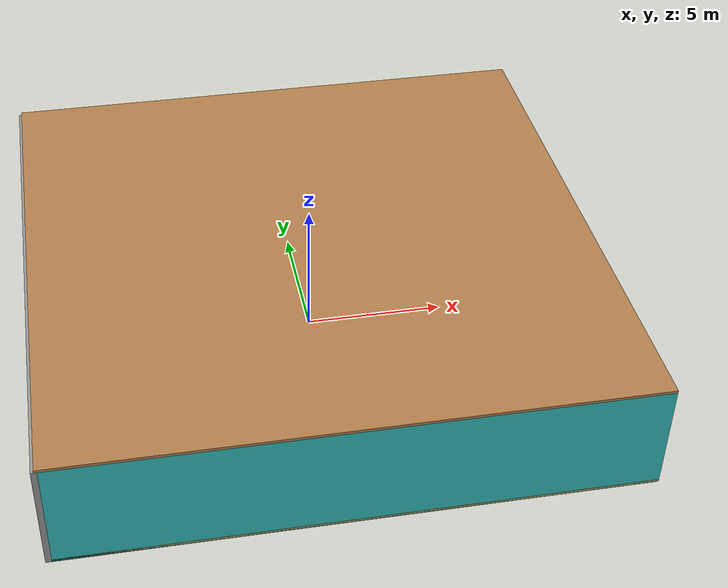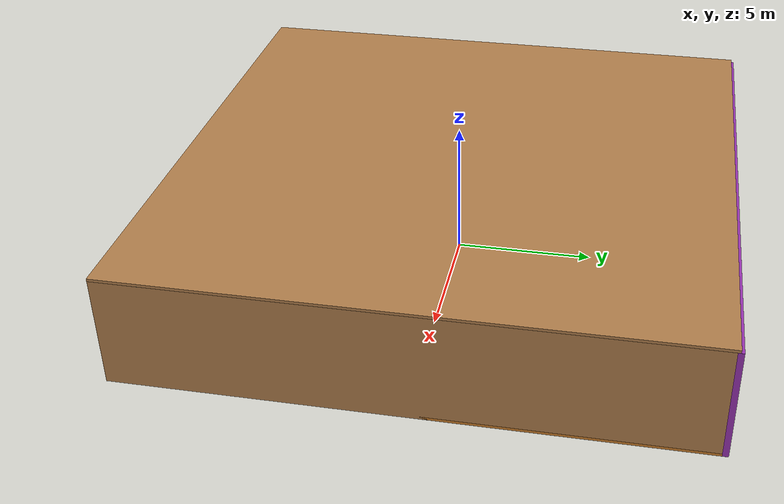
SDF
<sdf version="1.4">
 <world name="default">
  <physics type="ode">
   <max_step_size>0.001</max_step_size>
   <real_time_factor>1</real_time_factor>
   <real_time_update_rate>1000</real_time_update_rate>
   <gravity>0 0 -9.8</gravity>
  </physics>
  <scene><ambient>0.4 0.4 0.4 1</ambient><background>0.7 0.7 0.7 1</background><shadows>1</shadows></scene>
  <model name="Surrounding">
   <static>1</static>
   <link name="Ceiling">
    <collision name="Ceiling_Collision"><geometry><box><size>20 20 0.1</size></box></geometry></collision>
    <visual name="Ceiling_Visual">
     <geometry><box><size>20 20 0.1</size></box></geometry>
     <material>
      <script><uri>file://media/materials/scripts/gazebo.material</uri><name>Gazebo/WoodFloor</name></script>
     </material>
    </visual>
    <pose>0 0 4.05 0 0 0</pose>
   </link>
   <link name="Wall_South">
    <collision name="Wall_South_Collision">
     <geometry><box><size>20 0 4</size></box></geometry>
     <pose>0 0 2 0 -0 0</pose>
    </collision>
    <visual name="Wall_South_Visual">
     <pose>0 0 2 0 -0 0</pose>
     <geometry><box><size>20 0 4</size></box></geometry>
     <material>
      <script>
       <uri>file://media/materials/scripts/gazebo.material</uri>
       <name>Gazebo/TurquoiseGlowOutline</name>
      </script>
     </material>
    </visual>
    <velocity_decay><linear>0</linear><angular>0</angular></velocity_decay>
    <pose>0 -10 0 0 -0 0</pose>
   </link>
   <link name="Wall_East">
    <collision name="Wall_21_Collision">
     <geometry><box><size>20 0 4</size></box></geometry>
     <pose>0 0 2 0 -0 0</pose>
    </collision>
    <visual name="Wall_21_Visual">
     <pose>0 0 2 0 -0 0</pose>
     <geometry><box><size>20 0 4</size></box></geometry>
     <material>
      <script><uri>file://media/materials/scripts/gazebo.material</uri><name>Gazebo/Wood</name></script>
     </material>
    </visual>
    <velocity_decay><linear>0</linear><angular>0</angular></velocity_decay>
    <pose>10 0 0 0 -0 1.5708</pose>
   </link>
   <link name="Wall_North">
    <collision name="Wall_22_Collision">
     <geometry><box><size>20 0.2 4</size></box></geometry>
     <pose>0 0 2 0 -0 0</pose>
    </collision>
    <visual name="Wall_22_Visual">
     <pose>0 0 2 0 -0 0</pose>
     <geometry><box><size>20 0.2 4</size></box></geometry>
     <material>
      <script><uri>file://media/materials/scripts/gazebo.material</uri><name>Gazebo/PurpleGlow</name></script>
     </material>
    </visual>
    <velocity_decay><linear>0</linear><angular>0</angular></velocity_decay>
    <pose>0 10 0 0 -0 0</pose>
   </link>
   <link name="Wall_West">
    <collision name="Wall_23_Collision">
     <geometry><box><size>20 0.2 4</size></box></geometry>
     <pose>0 0 2 0 -0 0</pose>
    </collision>
    <visual name="Wall_23_Visual">
     <pose>0 0 2 0 -0 0</pose>
     <geometry><box><size>20 0.2 4</size></box></geometry>
     <material>
      <script><uri>file://media/materials/scripts/gazebo.material</uri><name>Gazebo/GreyGradientSky</name></script>
     </material>
    </visual>
    <velocity_decay><linear>0</linear><angular>0</angular></velocity_decay>
    <pose>-10 0 0 0 0 -1.5708</pose>
   </link>
   <link name="Ground_link">
    <collision name="collision">
     <pose>0 0 .05 0 -0 0</pose>
     <geometry><box><size>20 20 0.1</size></box></geometry>
    </collision>
    <visual name="visual">
     <pose>0 0 .05 0 -0 0</pose>
     <geometry><box><size>20 20 0.1</size></box></geometry>
     <material>
      <script>
       <uri>file://media/materials/scripts/gazebo.material</uri>
       <name>Gazebo/OrangeTransparent</name>
      </script>
     </material>
    </visual>
   </link>
   <static>1</static>
  </model>
  <spherical_coordinates>
   <surface_model>EARTH_WGS84</surface_model>
   <latitude_deg>0</latitude_deg>
   <longitude_deg>0</longitude_deg>
   <elevation>0</elevation>
   <heading_deg>0</heading_deg>
  </spherical_coordinates>
  <light name="lightball_0" type="diffuse">
   <diffuse>0.8 0.8 0.8 1</diffuse>
   <specular>0.2 0.2 0.2 1</specular>
   <attenuation>
    <range>100</range>
    <constant>0.7</constant>
    <linear>0.01</linear>
    <quadratic>0.001</quadratic>
   </attenuation>
   <direction>-0.5 0.1 -0.9</direction>
   <pose>-1.46556617056 9.21511826037 3.2278424814 0 0 0</pose>
  </light>
  <light name="lightball_1" type="diffuse">
   <diffuse>0.8 0.8 0.8 1</diffuse>
   <specular>0.2 0.2 0.2 1</specular>
   <attenuation>
    <range>100</range>
    <constant>0.7</constant>
    <linear>0.01</linear>
    <quadratic>0.001</quadratic>
   </attenuation>
   <direction>-0.5 0.1 -0.9</direction>
   <pose>-3.04729255329 -8.40506404665 1.89753921167 0 0 0</pose>
  </light>
  <light name="lightball_2" type="diffuse">
   <diffuse>0.8 0.8 0.8 1</diffuse>
   <specular>0.2 0.2 0.2 1</specular>
   <attenuation>
    <range>100</range>
    <constant>0.7</constant>
    <linear>0.01</linear>
    <quadratic>0.001</quadratic>
   </attenuation>
   <direction>-0.5 0.1 -0.9</direction>
   <pose>-4.68136268137 -5.83680888541 1.67721368618 0 0 0</pose>
  </light>
  <light name="lightball_3" type="diffuse">
   <diffuse>0.8 0.8 0.8 1</diffuse>
   <specular>0.2 0.2 0.2 1</specular>
   <attenuation>
    <range>100</range>
    <constant>0.7</constant>
    <linear>0.01</linear>
    <quadratic>0.001</quadratic>
   </attenuation>
   <direction>-0.5 0.1 -0.9</direction>
   <pose>-9.25592748452 -6.90907104822 1.39598801764 0 0 0</pose>
  </light>
  <light name="lightball_4" type="diffuse">
   <diffuse>0.8 0.8 0.8 1</diffuse>
   <specular>0.2 0.2 0.2 1</specular>
   <attenuation>
    <range>100</range>
    <constant>0.7</constant>
    <linear>0.01</linear>
    <quadratic>0.001</quadratic>
   </attenuation>
   <direction>-0.5 0.1 -0.9</direction>
   <pose>-8.18174609155 5.35850455137 2.11122148118 0 0 0</pose>
  </light>
  <light name="lightball_5" type="diffuse">
   <diffuse>0.8 0.8 0.8 1</diffuse>
   <specular>0.2 0.2 0.2 1</specular>
   <attenuation>
    <range>100</range>
    <constant>0.7</constant>
    <linear>0.01</linear>
    <quadratic>0.001</quadratic>
   </attenuation>
   <direction>-0.5 0.1 -0.9</direction>
   <pose>-0.750895267056 2.75127881149 3.15332241736 0 0 0</pose>
  </light>
  <light name="lightball_6" type="diffuse">
   <diffuse>0.8 0.8 0.8 1</diffuse>
   <specular>0.2 0.2 0.2 1</specular>
   <attenuation>
    <range>100</range>
    <constant>0.7</constant>
    <linear>0.01</linear>
    <quadratic>0.001</quadratic>
   </attenuation>
   <direction>-0.5 0.1 -0.9</direction>
   <pose>0.0992688660603 -7.08751083375 1.43881518917 0 0 0</pose>
  </light>
  <light name="lightball_7" type="diffuse">
   <diffuse>0.8 0.8 0.8 1</diffuse>
   <specular>0.2 0.2 0.2 1</specular>
   <attenuation>
    <range>100</range>
    <constant>0.7</constant>
    <linear>0.01</linear>
    <quadratic>0.001</quadratic>
   </attenuation>
   <direction>-0.5 0.1 -0.9</direction>
   <pose>-1.52463000476 6.40628726701 1.5619262059 0 0 0</pose>
  </light>
  <light name="lightball_8" type="diffuse">
   <diffuse>0.8 0.8 0.8 1</diffuse>
   <specular>0.2 0.2 0.2 1</specular>
   <attenuation>
    <range>100</range>
    <constant>0.7</constant>
    <linear>0.01</linear>
    <quadratic>0.001</quadratic>
   </attenuation>
   <direction>-0.5 0.1 -0.9</direction>
   <pose>1.90103284874 -9.30595210841 3.1307996615 0 0 0</pose>
  </light>
  <light name="lightball_9" type="diffuse">
   <diffuse>0.8 0.8 0.8 1</diffuse>
   <specular>0.2 0.2 0.2 1</specular>
   <attenuation>
    <range>100</range>
    <constant>0.7</constant>
    <linear>0.01</linear>
    <quadratic>0.001</quadratic>
   </attenuation>
   <direction>-0.5 0.1 -0.9</direction>
   <pose>-6.19148794937 -6.35439979289 3.45576426175 0 0 0</pose>
  </light>
  <include><uri>model://table</uri><pose>-7.79367450234 3.96668938047 0 0 0 1.4919030309</pose></include>
  <include>
   <uri>model://textured_shapes</uri>
   <pose>-4.86890272852 -1.67670924054 0 0 0 0.13080528372</pose>
  </include>
  <include>
   <uri>model://construction_cone</uri>
   <pose>-1.54990472717 -5.01024462492 0 0 0 0.315439697285</pose>
  </include>
  <include>
   <uri>model://construction_cone</uri>
   <pose>-0.788151811869 7.00568819408 0 0 0 2.58946546825</pose>
  </include>
  <include>
   <uri>model://construction_cone</uri>
   <pose>1.66467362325 -7.64328887501 0 0 0 2.21975057376</pose>
  </include>
  <include>
   <uri>model://construction_cone</uri>
   <pose>4.22019253446 3.8213035517 0 0 0 1.70473403305</pose>
  </include>
 </world>
</sdf>

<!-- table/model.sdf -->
<sdf version="1.5">
  <model name="table">
    <static>true</static>
    <link name="link">
      <collision name="surface">
        <pose>0 0 1.0 0 0 0</pose>
        <geometry>
          <box>
            <size>1.5 0.8 0.03</size>
          </box>
        </geometry>
        <surface>
          <friction>
            <ode>
              <mu>0.6</mu>
              <mu2>0.6</mu2>
            </ode>
          </friction>
        </surface>
      </collision>
      <visual name="visual1">
        <pose>0 0 1.0 0 0 0</pose>
        <geometry>
          <box>
            <size>1.5 0.8 0.03</size>
          </box>
        </geometry>
        <material>
          <script>
            <uri>model://media/materials/scripts/gazebo.material</uri>
            <name>Gazebo/Wood</name>
          </script>
        </material>
      </visual>
      <collision name="front_left_leg">
        <pose>0.68 0.38 0.5 0 0 0</pose>
        <geometry>
          <cylinder>
            <radius>0.02</radius>
            <length>1.0</length>
          </cylinder>
        </geometry>
      </collision>
      <visual name="front_left_leg">
        <pose>0.68 0.38 0.5 0 0 0</pose>
        <geometry>
          <cylinder>
            <radius>0.02</radius>
            <length>1.0</length>
          </cylinder>
        </geometry>
        <material>
          <script>
            <uri>model://media/materials/scripts/gazebo.material</uri>
            <name>Gazebo/Grey</name>
          </script>
        </material>
      </visual>
      <collision name="front_right_leg">
        <pose>0.68 -0.38 0.5 0 0 0</pose>
        <geometry>
          <cylinder>
            <radius>0.02</radius>
            <length>1.0</length>
          </cylinder>
        </geometry>
      </collision>
      <visual name="front_right_leg">
        <pose>0.68 -0.38 0.5 0 0 0</pose>
        <geometry>
          <cylinder>
            <radius>0.02</radius>
            <length>1.0</length>
          </cylinder>
        </geometry>
        <material>
          <script>
            <uri>model://media/materials/scripts/gazebo.material</uri>
            <name>Gazebo/Grey</name>
          </script>
        </material>
      </visual>
      <collision name="back_right_leg">
        <pose>-0.68 -0.38 0.5 0 0 0</pose>
        <geometry>
          <cylinder>
            <radius>0.02</radius>
            <length>1.0</length>
          </cylinder>
        </geometry>
      </collision>
      <visual name="back_right_leg">
        <pose>-0.68 -0.38 0.5 0 0 0</pose>
        <geometry>
          <cylinder>
            <radius>0.02</radius>
            <length>1.0</length>
          </cylinder>
        </geometry>
        <material>
          <script>
            <uri>model://media/materials/scripts/gazebo.material</uri>
            <name>Gazebo/Grey</name>
          </script>
        </material>
      </visual>
      <collision name="back_left_leg">
        <pose>-0.68 0.38 0.5 0 0 0</pose>
        <geometry>
          <cylinder>
            <radius>0.02</radius>
            <length>1.0</length>
          </cylinder>
        </geometry>
      </collision>
      <visual name="back_left_leg">
        <pose>-0.68 0.38 0.5 0 0 0</pose>
        <geometry>
          <cylinder>
            <radius>0.02</radius>
            <length>1.0</length>
          </cylinder>
        </geometry>
        <material>
          <script>
            <uri>model://media/materials/scripts/gazebo.material</uri>
            <name>Gazebo/Grey</name>
          </script>
        </material>
      </visual>
    </link>
  </model>
</sdf>

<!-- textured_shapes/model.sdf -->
<sdf version="1.6">
  <model name="textured_shapes">
    <pose>0 0 0.5 0 0 0</pose>
    <link name="box">
      <pose>0 -1.5 0 0 0 0</pose>
      <collision name="collision">
        <geometry>
          <box>
            <size>1 1 1</size>
          </box>
        </geometry>
      </collision>
      <visual name="visual">
        <geometry>
          <box>
            <size>1 1 1</size>
          </box>
        </geometry>
        <material>
          <script>
            <uri>model://../model_source/models/textured_shapes/materials/scripts</uri>
            <uri>model://../model_source/models/textured_shapes/materials/textures</uri>
            <name>TexturedShape/Squares</name>
          </script>
        </material>
      </visual>
    </link>
    <link name="sphere">
      <collision name="collision">
        <geometry>
          <sphere>
            <radius>0.5</radius>
          </sphere>
        </geometry>
      </collision>
      <visual name="visual">
        <geometry>
          <sphere>
            <radius>0.5</radius>
          </sphere>
        </geometry>
        <material>
          <script>
            <uri>model://../model_source/models/textured_shapes/materials/scripts</uri>
            <uri>model://../model_source/models/textured_shapes/materials/textures</uri>
            <name>TexturedShape/Squares</name>
          </script>
        </material>
      </visual>
    </link>
    <link name="cylinder">
      <pose>0 1.5 0 0 0 0</pose>
      <collision name="collision">
        <geometry>
          <cylinder>
            <radius>0.5</radius>
            <length>1</length>
          </cylinder>
        </geometry>
      </collision>
      <visual name="visual">
        <geometry>
          <cylinder>
            <radius>0.5</radius>
            <length>1</length>
          </cylinder>
        </geometry>
        <material>
          <script>
            <uri>model://../model_source/models/textured_shapes/materials/scripts</uri>
            <uri>model://../model_source/models/textured_shapes/materials/textures</uri>
            <name>TexturedShape/Squares</name>
          </script>
        </material>
      </visual>
    </link>
  </model>
</sdf>

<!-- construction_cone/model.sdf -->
<sdf version="1.5">
  <model name="Construction Cone">
    <link name="link">
      <collision name="collision">
        <geometry>
          <mesh>
            <scale>10 10 10</scale>
            <uri>file://isr-testbed/construction_cone/meshes/construction_cone.dae</uri>
          </mesh>
        </geometry>
      </collision>
      <visual name="visual">
        <geometry>
          <mesh>
            <scale>10 10 10</scale>
            <uri>file://isr-testbed/construction_cone/meshes/construction_cone.dae</uri>
          </mesh>
        </geometry>
      </visual>
    </link>
  </model>
</sdf>
